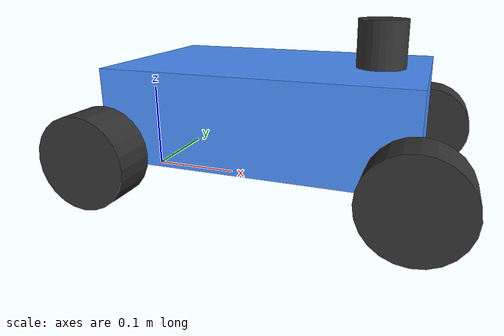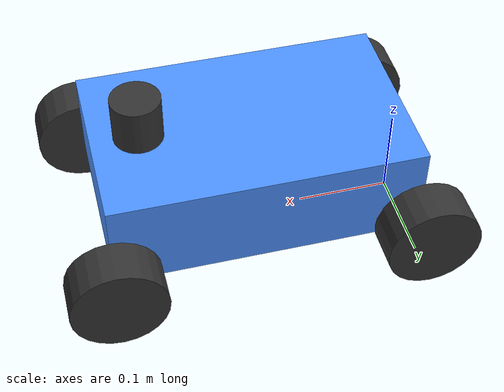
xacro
<?xml version="1.0"?>
<!-- Originally from https://github.com/mit-racecar/racecar_simulator/blob/master/racecar.xacro -->
<!-- A simple model of the racecar for rviz -->

<robot xmlns:xacro="http://www.ros.org/wiki/xacro" name="racecar">

  <!-- GEOMETRY PARAMS -->
  <xacro:property name="wheelbase" value="0.325" />
  <xacro:property name="width" value="0.2" />
  <xacro:property name="height" value="0.1" />
  <xacro:property name="ground_offset" value="0.04" />
  <xacro:property name="wheel_radius" value="0.05" />
  <xacro:property name="wheel_length" value="0.045" />
  <xacro:property name="laser_distance_from_base_link" value="0.275" />
  <xacro:property name="laser_height" value="0.05" />
  <xacro:property name="laser_radius" value="0.026" />

  <!-- ISAAC GYM RIGID BODY PARAMS -->
  <!-- Wheel Properties -->
  <xacro:property name="wheel_mass" value=".5" />
  <xacro:property name="wheel_joint_props">
    <axis xyz="0 1 0"/>
  </xacro:property>
  <xacro:property name="wheel_inertia">
    <inertia ixx="0.0013" ixy="0" ixz="0" iyy="0.0024" iyz="0" izz="0.0013"/>
  </xacro:property>

  <!-- Hinge Properties -->
  <xacro:property name="hinge_mass" value="0.01" />
  <xacro:property name="hinge_joint_props">
    <axis xyz="0 0 1"/>
    <limit lower="${-1 * pi / 6}" upper="${pi / 6}" effort="1000" velocity="1.0"/>
  </xacro:property>

  <!-- Chassis Properties -->
  <xacro:property name="chassis_mass" value="10" />
  <xacro:property name="chassis_inertia">
    <inertia
      ixx="1"
      ixy="0"
      ixz="0"
      iyy="1"
      iyz="0"
      izz="1"
    />
  </xacro:property>

  <!-- Sensor Properties -->
  <xacro:property name="laser_mass" value=".01" />

  <material name="black">
    <color rgba="0.2 0.2 0.2 1."/>
  </material>

  <material name="blue">
    <color rgba="0.3 0.57 1. 1."/>
  </material>

  <!-- MACROS -->
  <xacro:macro name="wheel_block" params="name">
    <link name="${name}">
      <xacro:visual_collision_block>
        <cylinder radius="${wheel_radius}" length="${wheel_length}"/>
        <container>
          <material name="black"/>
          <origin rpy="${pi/2} 0 0"/>
        </container>
      </xacro:visual_collision_block>
      <xacro:inertial_block mass="${wheel_mass}">
        <container>
          <xacro:insert_block name="wheel_inertia"/>
        </container>
      </xacro:inertial_block>
    </link>
  </xacro:macro>

  <xacro:macro name="inertial_block" params="mass **kwargs">
    <inertial>
      <mass value="${mass}"/>
      <xacro:insert_block name="kwargs"/>
    </inertial>
  </xacro:macro>

  <xacro:macro name="visual_collision_block" params="*geometry **kwargs">
    <visual>
      <geometry>
        <xacro:insert_block name="geometry"/>
      </geometry>
      <xacro:insert_block name="kwargs"/>
    </visual>
    <collision>
      <geometry>
        <xacro:insert_block name="geometry"/>
      </geometry>
      <xacro:insert_block name="kwargs"/>
    </collision>
  </xacro:macro>

  <!-- MAIN FILE -->
  <link name="chassis">
    <visual>
      <origin xyz="${wheelbase/2} 0 ${ground_offset+height/2}"/>
      <geometry>
        <box size="${wheelbase} ${width} ${height}"/>
      </geometry>
      <material name="blue"/>
    </visual>
    <xacro:inertial_block mass="${chassis_mass}">
      <container>
        <xacro:insert_block name="chassis_inertia"/>
        <origin xyz="${wheelbase/2} 0 ${ground_offset+height/2}"/>
      </container>
    </xacro:inertial_block>
  </link>

  <joint name="chassis_to_laser_model" type="fixed">
    <parent link="chassis"/>
    <child link="laser_model"/>
    <origin xyz="${laser_distance_from_base_link} 0 ${ground_offset+height+(laser_height/2)}"/>
  </joint>

  <link name="laser_model">
    <visual>
      <geometry>
        <cylinder radius="${laser_radius}" length="${laser_height}"/>
      </geometry>
      <material name="black"/>
    </visual>
    <xacro:inertial_block mass="${laser_mass}"><container/></xacro:inertial_block>
  </link>

  <joint name="chassis_to_back_left_wheel" type="continuous">
    <parent link="chassis"/>
    <child link="back_left_wheel"/>
    <origin xyz="0 ${(wheel_length+width)/2} ${wheel_radius}"/>
    <xacro:insert_block name="wheel_joint_props"/>
  </joint>

  <xacro:wheel_block name="back_left_wheel"/>

  <joint name="chassis_to_back_right_wheel" type="continuous">
    <parent link="chassis"/>
    <child link="back_right_wheel"/>
    <origin xyz="0 ${-(wheel_length+width)/2} ${wheel_radius}"/>
    <xacro:insert_block name="wheel_joint_props"/>
  </joint>

  <xacro:wheel_block name="back_right_wheel"/>

  <joint name="chassis_to_front_left_hinge" type="revolute">
    <parent link="chassis"/>
    <child link="front_left_hinge"/>
    <origin xyz="${wheelbase} ${(wheel_length+width)/2} ${wheel_radius}"/>
    <xacro:insert_block name="hinge_joint_props"/>
  </joint>

  <link name="front_left_hinge">
    <xacro:inertial_block mass="${hinge_mass}"><container/></xacro:inertial_block>
  </link>

  <joint name="front_left_hinge_to_wheel" type="continuous">
    <parent link="front_left_hinge"/>
    <child link="front_left_wheel"/>
    <xacro:insert_block name="wheel_joint_props"/>
  </joint>

  <xacro:wheel_block name="front_left_wheel"/>

  <joint name="chassis_to_front_right_hinge" type="revolute">
    <parent link="chassis"/>
    <child link="front_right_hinge"/>
    <origin xyz="${wheelbase} ${-(wheel_length+width)/2} ${wheel_radius}"/>
    <xacro:insert_block name="hinge_joint_props"/>
  </joint>

  <link name="front_right_hinge">
     <xacro:inertial_block mass="${hinge_mass}"><container/></xacro:inertial_block>
  </link>

  <joint name="front_right_hinge_to_wheel" type="continuous">
    <parent link="front_right_hinge"/>
    <child link="front_right_wheel"/>
    <xacro:insert_block name="wheel_joint_props"/>
  </joint>

  <xacro:wheel_block name="front_right_wheel"/>

</robot>
